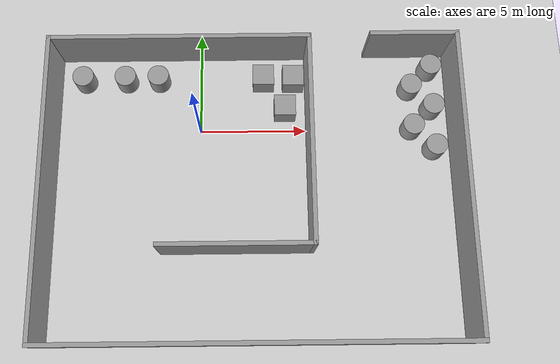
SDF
<sdf version="1.4">
 <world name="default">
  <model name="ground_plane">
   <static>1</static>
   <link name="link">
    <collision name="collision">
     <geometry><plane><normal>0 0 1</normal><size>100 100</size></plane></geometry>
     <surface><friction><ode><mu>100</mu><mu2>50</mu2></ode></friction></surface>
    </collision>
    <visual name="visual">
     <cast_shadows>0</cast_shadows>
     <geometry><plane><normal>0 0 1</normal><size>100 100</size></plane></geometry>
     <material>
      <script><uri>file://media/materials/scripts/gazebo.material</uri><name>Gazebo/Grey</name></script>
     </material>
    </visual>
    <velocity_decay><linear>0</linear><angular>0</angular></velocity_decay>
   </link>
  </model>
  <light name="sun" type="directional">
   <pose>0 0 10 0 -0 0</pose>
   <diffuse>0.8 0.8 0.8 1</diffuse>
   <specular>0.2 0.2 0.2 1</specular>
   <attenuation>
    <range>1000</range>
    <constant>0.9</constant>
    <linear>0.01</linear>
    <quadratic>0.001</quadratic>
   </attenuation>
   <direction>-0.5 0.1 -0.9</direction>
  </light>
  <model name="new_world">
   <link name="Wall_0">
    <collision name="Wall_0_Collision">
     <geometry><box><size>6.98 0.2 2.5</size></box></geometry>
     <pose>0 0 1.25 0 -0 0</pose>
    </collision>
    <visual name="Wall_0_Visual">
     <pose>0 0 1.25 0 -0 0</pose>
     <geometry><box><size>6.98 0.2 2.5</size></box></geometry>
     <material>
      <script><uri>file://media/materials/scripts/gazebo.material</uri><name>Gazebo/Grey</name></script>
     </material>
    </visual>
    <velocity_decay><linear>0</linear><angular>0</angular></velocity_decay>
    <pose>1.71 -5.77 0 0 -0 0</pose>
   </link>
   <link name="Wall_1">
    <collision name="Wall_1_Collision">
     <geometry><box><size>9.80033 0.2 2.5</size></box></geometry>
     <pose>0 0 1.25 0 -0 0</pose>
    </collision>
    <visual name="Wall_1_Visual">
     <pose>0 0 1.25 0 -0 0</pose>
     <geometry><box><size>9.80033 0.2 2.5</size></box></geometry>
     <material>
      <script><uri>file://media/materials/scripts/gazebo.material</uri><name>Gazebo/Grey</name></script>
     </material>
    </visual>
    <velocity_decay><linear>0</linear><angular>0</angular></velocity_decay>
    <pose>5.1 -0.969835 0 0 -0 1.5708</pose>
   </link>
   <link name="Wall_2">
    <collision name="Wall_2_Collision">
     <geometry><box><size>12.1618 0.2 2.5</size></box></geometry>
     <pose>0 0 1.25 0 -0 0</pose>
    </collision>
    <visual name="Wall_2_Visual">
     <pose>0 0 1.25 0 -0 0</pose>
     <geometry><box><size>12.1618 0.2 2.5</size></box></geometry>
     <material>
      <script><uri>file://media/materials/scripts/gazebo.material</uri><name>Gazebo/Grey</name></script>
     </material>
    </visual>
    <velocity_decay><linear>0</linear><angular>0</angular></velocity_decay>
    <pose>-0.880903 3.83033 0 0 -0 3.14159</pose>
   </link>
   <link name="Wall_3">
    <collision name="Wall_3_Collision">
     <geometry><box><size>13.879 0.2 2.5</size></box></geometry>
     <pose>0 0 1.25 0 -0 0</pose>
    </collision>
    <visual name="Wall_3_Visual">
     <pose>0 0 1.25 0 -0 0</pose>
     <geometry><box><size>13.879 0.2 2.5</size></box></geometry>
     <material>
      <script><uri>file://media/materials/scripts/gazebo.material</uri><name>Gazebo/Grey</name></script>
     </material>
    </visual>
    <velocity_decay><linear>0</linear><angular>0</angular></velocity_decay>
    <pose>-6.86181 -3.00917 0 0 0 -1.5708</pose>
   </link>
   <link name="Wall_4">
    <collision name="Wall_4_Collision">
     <geometry><box><size>18.9692 0.2 2.5</size></box></geometry>
     <pose>0 0 1.25 0 -0 0</pose>
    </collision>
    <visual name="Wall_4_Visual">
     <pose>0 0 1.25 0 -0 0</pose>
     <geometry><box><size>18.9692 0.2 2.5</size></box></geometry>
     <material>
      <script><uri>file://media/materials/scripts/gazebo.material</uri><name>Gazebo/Grey</name></script>
     </material>
    </visual>
    <velocity_decay><linear>0</linear><angular>0</angular></velocity_decay>
    <pose>2.5228 -9.84868 0 0 -0 0</pose>
   </link>
   <link name="Wall_5">
    <collision name="Wall_5_Collision">
     <geometry><box><size>13.9523 0.2 2.5</size></box></geometry>
     <pose>0 0 1.25 0 -0 0</pose>
    </collision>
    <visual name="Wall_5_Visual">
     <pose>0 0 1.25 0 -0 0</pose>
     <geometry><box><size>13.9523 0.2 2.5</size></box></geometry>
     <material>
      <script><uri>file://media/materials/scripts/gazebo.material</uri><name>Gazebo/Grey</name></script>
     </material>
    </visual>
    <velocity_decay><linear>0</linear><angular>0</angular></velocity_decay>
    <pose>11.9074 -2.97252 0 0 -0 1.5708</pose>
   </link>
   <link name="Wall_6">
    <collision name="Wall_6_Collision">
     <geometry><box><size>4.11023 0.2 2.5</size></box></geometry>
     <pose>0 0 1.25 0 -0 0</pose>
    </collision>
    <visual name="Wall_6_Visual">
     <pose>0 0 1.25 0 -0 0</pose>
     <geometry><box><size>4.11023 0.2 2.5</size></box></geometry>
     <material>
      <script><uri>file://media/materials/scripts/gazebo.material</uri><name>Gazebo/Grey</name></script>
     </material>
    </visual>
    <velocity_decay><linear>0</linear><angular>0</angular></velocity_decay>
    <pose>9.95229 3.90363 0 0 -0 3.14159</pose>
   </link>
   <static>1</static>
  </model>
  <physics type="ode">
   <max_step_size>0.001</max_step_size>
   <real_time_factor>1</real_time_factor>
   <real_time_update_rate>1000</real_time_update_rate>
   <gravity>0 0 -9.8</gravity>
  </physics>
  <scene><ambient>0.4 0.4 0.4 1</ambient><background>0.7 0.7 0.7 1</background><shadows>1</shadows></scene>
  <spherical_coordinates>
   <surface_model>EARTH_WGS84</surface_model>
   <latitude_deg>0</latitude_deg>
   <longitude_deg>0</longitude_deg>
   <elevation>0</elevation>
   <heading_deg>0</heading_deg>
  </spherical_coordinates>
  <model name="unit_cylinder_1">
   <pose>-5.57183 2.54335 0.499998 1e-06 -0 0</pose>
   <link name="link">
    <inertial>
     <mass>1</mass>
     <inertia><ixx>1</ixx><ixy>0</ixy><ixz>0</ixz><iyy>1</iyy><iyz>0</iyz><izz>1</izz></inertia>
    </inertial>
    <collision name="collision">
     <geometry><cylinder><radius>0.5</radius><length>1</length></cylinder></geometry>
    </collision>
    <visual name="visual">
     <geometry><cylinder><radius>0.5</radius><length>1</length></cylinder></geometry>
     <material>
      <script><uri>file://media/materials/scripts/gazebo.material</uri><name>Gazebo/Grey</name></script>
     </material>
    </visual>
    <velocity_decay><linear>0</linear><angular>0</angular></velocity_decay>
   </link>
   <static>0</static>
  </model>
  <model name="unit_cylinder_2">
   <pose>-3.56371 2.53868 0.499992 -1e-06 -0 0</pose>
   <link name="link">
    <inertial>
     <mass>1</mass>
     <inertia><ixx>1</ixx><ixy>0</ixy><ixz>0</ixz><iyy>1</iyy><iyz>0</iyz><izz>1</izz></inertia>
    </inertial>
    <collision name="collision">
     <geometry><cylinder><radius>0.5</radius><length>1</length></cylinder></geometry>
    </collision>
    <visual name="visual">
     <geometry><cylinder><radius>0.5</radius><length>1</length></cylinder></geometry>
     <material>
      <script><uri>file://media/materials/scripts/gazebo.material</uri><name>Gazebo/Grey</name></script>
     </material>
    </visual>
    <velocity_decay><linear>0</linear><angular>0</angular></velocity_decay>
   </link>
   <static>0</static>
  </model>
  <model name="unit_cylinder_3">
   <pose>-2 2.55038 0.499998 1e-06 -0 0</pose>
   <link name="link">
    <inertial>
     <mass>1</mass>
     <inertia><ixx>1</ixx><ixy>0</ixy><ixz>0</ixz><iyy>1</iyy><iyz>0</iyz><izz>1</izz></inertia>
    </inertial>
    <collision name="collision">
     <geometry><cylinder><radius>0.5</radius><length>1</length></cylinder></geometry>
    </collision>
    <visual name="visual">
     <geometry><cylinder><radius>0.5</radius><length>1</length></cylinder></geometry>
     <material>
      <script><uri>file://media/materials/scripts/gazebo.material</uri><name>Gazebo/Grey</name></script>
     </material>
    </visual>
    <velocity_decay><linear>0</linear><angular>0</angular></velocity_decay>
   </link>
   <static>0</static>
  </model>
  <model name="unit_box_2">
   <pose>3 2.53662 0.5 0 -0 0</pose>
   <link name="link">
    <inertial>
     <mass>1</mass>
     <inertia><ixx>1</ixx><ixy>0</ixy><ixz>0</ixz><iyy>1</iyy><iyz>0</iyz><izz>1</izz></inertia>
    </inertial>
    <collision name="collision"><geometry><box><size>1 1 1</size></box></geometry></collision>
    <visual name="visual">
     <geometry><box><size>1 1 1</size></box></geometry>
     <material>
      <script><uri>file://media/materials/scripts/gazebo.material</uri><name>Gazebo/Grey</name></script>
     </material>
    </visual>
    <velocity_decay><linear>0</linear><angular>0</angular></velocity_decay>
   </link>
   <static>0</static>
  </model>
  <model name="unit_box_3">
   <pose>4.41476 2.49819 0.5 0 -0 0</pose>
   <link name="link">
    <inertial>
     <mass>1</mass>
     <inertia><ixx>1</ixx><ixy>0</ixy><ixz>0</ixz><iyy>1</iyy><iyz>0</iyz><izz>1</izz></inertia>
    </inertial>
    <collision name="collision"><geometry><box><size>1 1 1</size></box></geometry></collision>
    <visual name="visual">
     <geometry><box><size>1 1 1</size></box></geometry>
     <material>
      <script><uri>file://media/materials/scripts/gazebo.material</uri><name>Gazebo/Grey</name></script>
     </material>
    </visual>
    <velocity_decay><linear>0</linear><angular>0</angular></velocity_decay>
   </link>
   <static>0</static>
  </model>
  <model name="unit_box_4">
   <pose>4 1 0.5 0 -0 0</pose>
   <link name="link">
    <inertial>
     <mass>1</mass>
     <inertia><ixx>1</ixx><ixy>0</ixy><ixz>0</ixz><iyy>1</iyy><iyz>0</iyz><izz>1</izz></inertia>
    </inertial>
    <collision name="collision"><geometry><box><size>1 1 1</size></box></geometry></collision>
    <visual name="visual">
     <geometry><box><size>1 1 1</size></box></geometry>
     <material>
      <script><uri>file://media/materials/scripts/gazebo.material</uri><name>Gazebo/Grey</name></script>
     </material>
    </visual>
    <velocity_decay><linear>0</linear><angular>0</angular></velocity_decay>
   </link>
   <static>0</static>
  </model>
  <model name="unit_cylinder_4">
   <pose>11 3 0.499998 1e-06 -0 0</pose>
   <link name="link">
    <inertial>
     <mass>1</mass>
     <inertia><ixx>1</ixx><ixy>0</ixy><ixz>0</ixz><iyy>1</iyy><iyz>0</iyz><izz>1</izz></inertia>
    </inertial>
    <collision name="collision">
     <geometry><cylinder><radius>0.5</radius><length>1</length></cylinder></geometry>
    </collision>
    <visual name="visual">
     <geometry><cylinder><radius>0.5</radius><length>1</length></cylinder></geometry>
     <material>
      <script><uri>file://media/materials/scripts/gazebo.material</uri><name>Gazebo/Grey</name></script>
     </material>
    </visual>
    <velocity_decay><linear>0</linear><angular>0</angular></velocity_decay>
   </link>
   <static>0</static>
  </model>
  <model name="unit_cylinder_5">
   <pose>11 1 0.499992 -1e-06 -0 0</pose>
   <link name="link">
    <inertial>
     <mass>1</mass>
     <inertia><ixx>1</ixx><ixy>0</ixy><ixz>0</ixz><iyy>1</iyy><iyz>0</iyz><izz>1</izz></inertia>
    </inertial>
    <collision name="collision">
     <geometry><cylinder><radius>0.5</radius><length>1</length></cylinder></geometry>
    </collision>
    <visual name="visual">
     <geometry><cylinder><radius>0.5</radius><length>1</length></cylinder></geometry>
     <material>
      <script><uri>file://media/materials/scripts/gazebo.material</uri><name>Gazebo/Grey</name></script>
     </material>
    </visual>
    <velocity_decay><linear>0</linear><angular>0</angular></velocity_decay>
   </link>
   <static>0</static>
  </model>
  <model name="unit_cylinder_6">
   <pose>11 -1 0.499998 1e-06 -0 0</pose>
   <link name="link">
    <inertial>
     <mass>1</mass>
     <inertia><ixx>1</ixx><ixy>0</ixy><ixz>0</ixz><iyy>1</iyy><iyz>0</iyz><izz>1</izz></inertia>
    </inertial>
    <collision name="collision">
     <geometry><cylinder><radius>0.5</radius><length>1</length></cylinder></geometry>
    </collision>
    <visual name="visual">
     <geometry><cylinder><radius>0.5</radius><length>1</length></cylinder></geometry>
     <material>
      <script><uri>file://media/materials/scripts/gazebo.material</uri><name>Gazebo/Grey</name></script>
     </material>
    </visual>
    <velocity_decay><linear>0</linear><angular>0</angular></velocity_decay>
   </link>
   <static>0</static>
  </model>
  <model name="unit_cylinder_7">
   <pose>10 2 0.499992 0 -0 0</pose>
   <link name="link">
    <inertial>
     <mass>1</mass>
     <inertia><ixx>1</ixx><ixy>0</ixy><ixz>0</ixz><iyy>1</iyy><iyz>0</iyz><izz>1</izz></inertia>
    </inertial>
    <collision name="collision">
     <geometry><cylinder><radius>0.5</radius><length>1</length></cylinder></geometry>
    </collision>
    <visual name="visual">
     <geometry><cylinder><radius>0.5</radius><length>1</length></cylinder></geometry>
     <material>
      <script><uri>file://media/materials/scripts/gazebo.material</uri><name>Gazebo/Grey</name></script>
     </material>
    </visual>
    <velocity_decay><linear>0</linear><angular>0</angular></velocity_decay>
   </link>
   <static>0</static>
  </model>
  <model name="unit_cylinder_8">
   <pose>10 -0 0.499998 0 -0 0</pose>
   <link name="link">
    <inertial>
     <mass>1</mass>
     <inertia><ixx>1</ixx><ixy>0</ixy><ixz>0</ixz><iyy>1</iyy><iyz>0</iyz><izz>1</izz></inertia>
    </inertial>
    <collision name="collision">
     <geometry><cylinder><radius>0.5</radius><length>1</length></cylinder></geometry>
    </collision>
    <visual name="visual">
     <geometry><cylinder><radius>0.5</radius><length>1</length></cylinder></geometry>
     <material>
      <script><uri>file://media/materials/scripts/gazebo.material</uri><name>Gazebo/Grey</name></script>
     </material>
    </visual>
    <velocity_decay><linear>0</linear><angular>0</angular></velocity_decay>
   </link>
   <static>0</static>
  </model>
 </world>
</sdf>
